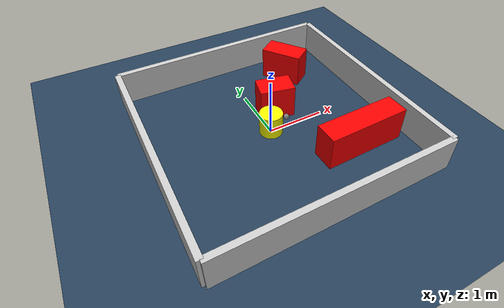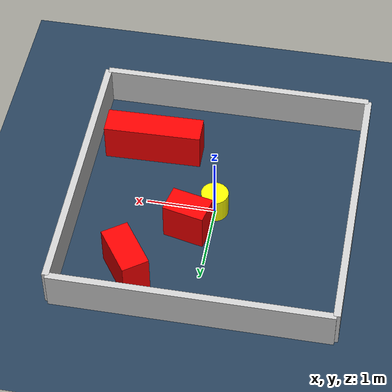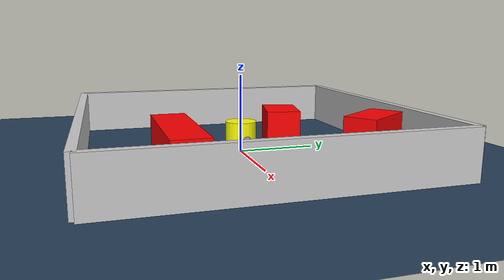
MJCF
<?xml version="1.0" ?>
<mujoco model="generated_environment">
  <option timestep="0.01" integrator="RK4" cone="elliptic"/>
  <default>
    <geom density="1"/>
  </default>
  <asset>
    <texture builtin="gradient" height="3072" rgb1="0.3 0.5 0.7" rgb2="0 0 0" type="skybox" width="512"/>
    <texture builtin="checker" height="300" mark="edge" markrgb="0.8 0.8 0.8" name="groundplane" rgb1="0.2 0.3 0.4" rgb2="0.1 0.2 0.3" type="2d" width="300"/>
    <material name="groundplane" reflectance="0.2" texrepeat="5 5" texture="groundplane" texuniform="true"/>
    <material name="robot" rgba="0.0 1.0 0.0 1"/>
  </asset>
  <worldbody>
    <light dir="0 0 -1" directional="true" pos="0 0 1.5"/>
    <geom condim="4" friction="1.0 0.005 0.001" material="groundplane" name="floor" size="0 0 0.05" type="plane"/>
    <body name="walls">
      <geom name="wall_1" condim="4" pos="-2.0 0.0 0.3" rgba="0.800000011920929 0.800000011920929 0.800000011920929 1.0" size="0.05 2.0 0.3" type="box"/>
      <geom name="wall_2" condim="4" pos="2.0 0.0 0.3" rgba="0.800000011920929 0.800000011920929 0.800000011920929 1.0" size="0.05 2.0 0.3" type="box"/>
      <geom name="wall_3" condim="4" pos="0.0 -2.0 0.3" rgba="0.800000011920929 0.800000011920929 0.800000011920929 1.0" size="2.0 0.05 0.3" type="box"/>
      <geom name="wall_4" condim="4" pos="0.0 2.0 0.3" rgba="0.800000011920929 0.800000011920929 0.800000011920929 1.0" size="2.0 0.05 0.3" type="box"/>
    </body>
    <body name="robot">
      <joint name="joint_x" type="slide" pos="0 0 0" axis="1 0 0"/>
      <joint name="joint_y" type="slide" pos="0 0 0" axis="0 1 0"/>
      <geom name="robot" type="sphere" pos="0.3 0.0 0.2" size="0.05" mass="5." friction="1.0 0.005 0.0001" condim="4" rgba="0.5 0.5 0.5 1.0"/>
      <site name="sensor_ball"/>
    </body>
    <body name="obstacle_movable_1">
      <geom name="obstacle_movable_1" condim="4" pos="0.0 0.0 0.2" euler="0 0 0.0" friction="1.0 0.005 0.001" rgba="1.0 1.0 0.0 1.0" size="0.2 0.2 0.0" type="cylinder" mass="0.1"/>
      <joint type="free"/>
    </body>
    <body name="obstacle_2_static">
      <geom name="obstacle_2_static" condim="4" pos="1.0914879542329223 -0.9892976629869181 0.3" euler="0 0 181.12486146242733" friction="1.0 0.005 0.001" rgba="1 0 0 1" size="0.7184337590080032 0.2 0.3" type="box"/>
    </body>
    <body name="obstacle_3_static">
      <geom name="obstacle_3_static" condim="4" pos="0.3142989941383978 0.43175839679101924 0.3" euler="0 0 347.44669164158927" friction="1.0 0.005 0.001" rgba="1 0 0 1" size="0.30472837077036863 0.2 0.3" type="box"/>
    </body>
    <body name="obstacle_4_static">
      <geom name="obstacle_4_static" condim="4" pos="1.0351953540759917 1.3293459313990914 0.3" euler="0 0 305.33381166637156" friction="1.0 0.005 0.001" rgba="1 0 0 1" size="0.3775425744583554 0.2 0.3" type="box"/>
    </body>
  </worldbody>
  <actuator>
    <motor name="actuator_x" joint="joint_x" gear="1" ctrlrange="-1 1"/>
    <motor name="actuator_y" joint="joint_y" gear="1" ctrlrange="-1 1"/>
  </actuator>
</mujoco>
